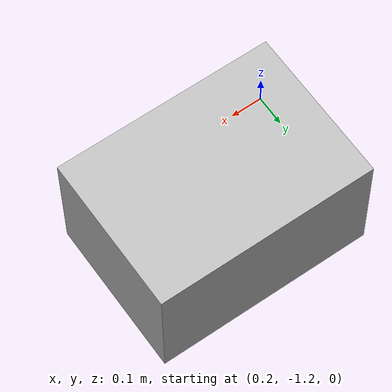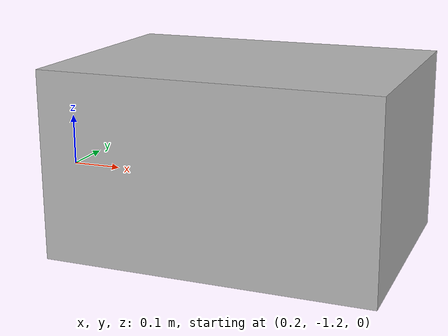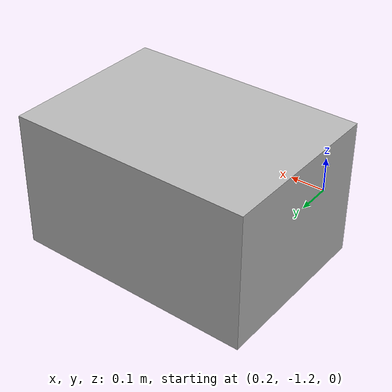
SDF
<?xml version="1.0" ?>
<sdf version="1.5">
  <model name="MPNet_TableRight">
    <pose frame="world">0.5 -1 0.0 0 0 1.5707963</pose>
    <static>true</static>
    <link name="MPNet_TableRight_link">
      <inertial>
        <mass>0.1</mass>
      </inertial>
      <visual name="MPNet_TableRight_visual">
        <geometry>
          <box>
            <size>0.5 0.7 0.4</size>
          </box>
        </geometry>
      </visual>

      <collision name='MPNet_TableRight_collision'>
        <laser_retro>0</laser_retro>
        <max_contacts>10</max_contacts>
        <geometry>
          <box>
            <size>0.5 0.7 0.4</size>
          </box>
        </geometry>
        <surface>
	  <friction>
            <ode>
              <mu>1</mu>
              <mu2>1</mu2>
              <fdir1>0 0 0</fdir1>
              <slip1>0</slip1>
              <slip2>0</slip2>
            </ode>
            <torsional>
              <coefficient>1</coefficient>
              <patch_radius>0</patch_radius>
              <surface_radius>0</surface_radius>
              <use_patch_radius>1</use_patch_radius>
              <ode>
                <slip>0</slip>
              </ode>
            </torsional>
          </friction>
          <bounce>
            <restitution_coefficient>0</restitution_coefficient>
            <threshold>1e+06</threshold>
          </bounce>
          <contact>
            <collide_without_contact>0</collide_without_contact>
            <collide_without_contact_bitmask>1</collide_without_contact_bitmask>
            <collide_bitmask>1</collide_bitmask>
            <ode>
              <soft_cfm>0</soft_cfm>
              <soft_erp>0.2</soft_erp>
              <kp>1e+13</kp>
              <kd>1</kd>
              <max_vel>0.01</max_vel>
              <min_depth>0</min_depth>
            </ode>
            <bullet>
              <split_impulse>1</split_impulse>
              <split_impulse_penetration_threshold>-0.01</split_impulse_penetration_threshold>
              <soft_cfm>0</soft_cfm>
              <soft_erp>0.2</soft_erp>
              <kp>1e+13</kp>
              <kd>1</kd>
            </bullet>
          </contact>
        </surface>
      </collision>

    </link>
  </model>
</sdf>
